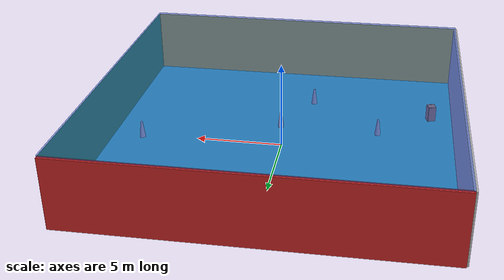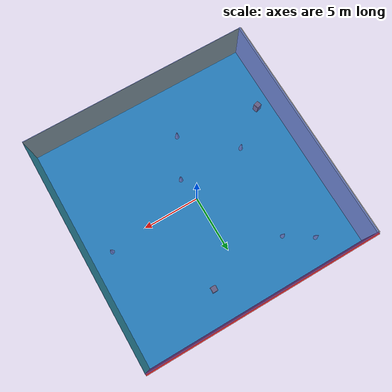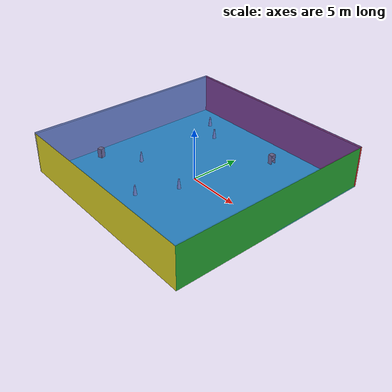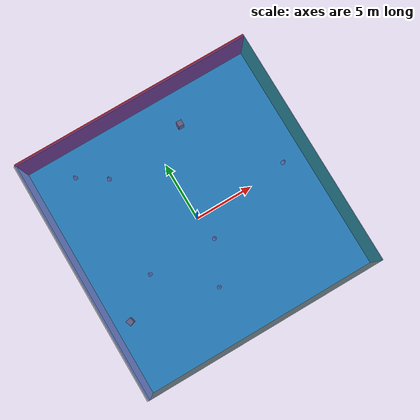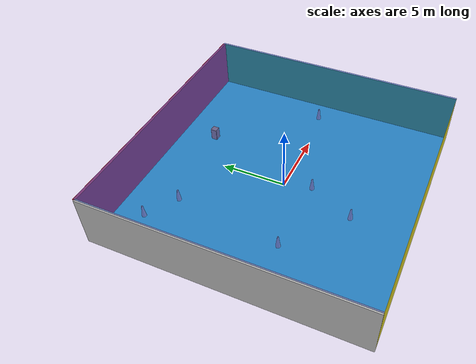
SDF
<sdf version="1.4">
 <world name="default">
  <physics type="ode">
   <max_step_size>0.001</max_step_size>
   <real_time_factor>1</real_time_factor>
   <real_time_update_rate>1000</real_time_update_rate>
   <gravity>0 0 -9.8</gravity>
  </physics>
  <scene><ambient>0.4 0.4 0.4 1</ambient><background>0.7 0.7 0.7 1</background><shadows>1</shadows></scene>
  <model name="Surrounding">
   <static>1</static>
   <link name="Ceiling">
    <collision name="Ceiling_Collision"><geometry><box><size>20 20 0.1</size></box></geometry></collision>
    <visual name="Ceiling_Visual">
     <geometry><box><size>20 20 0.1</size></box></geometry>
     <material>
      <script><uri>file://media/materials/scripts/gazebo.material</uri><name>Gazebo/BlueTransparent</name></script>
     </material>
    </visual>
    <pose>0 0 4.05 0 0 0</pose>
   </link>
   <link name="Wall_South">
    <collision name="Wall_South_Collision">
     <geometry><box><size>20 0 4</size></box></geometry>
     <pose>0 0 2 0 -0 0</pose>
    </collision>
    <visual name="Wall_South_Visual">
     <pose>0 0 2 0 -0 0</pose>
     <geometry><box><size>20 0 4</size></box></geometry>
     <material>
      <script><uri>file://media/materials/scripts/gazebo.material</uri><name>Gazebo/Yellow</name></script>
     </material>
    </visual>
    <velocity_decay><linear>0</linear><angular>0</angular></velocity_decay>
    <pose>0 -10 0 0 -0 0</pose>
   </link>
   <link name="Wall_East">
    <collision name="Wall_21_Collision">
     <geometry><box><size>20 0 4</size></box></geometry>
     <pose>0 0 2 0 -0 0</pose>
    </collision>
    <visual name="Wall_21_Visual">
     <pose>0 0 2 0 -0 0</pose>
     <geometry><box><size>20 0 4</size></box></geometry>
     <material>
      <script><uri>file://media/materials/scripts/gazebo.material</uri><name>Gazebo/Green</name></script>
     </material>
    </visual>
    <velocity_decay><linear>0</linear><angular>0</angular></velocity_decay>
    <pose>10 0 0 0 -0 1.5708</pose>
   </link>
   <link name="Wall_North">
    <collision name="Wall_22_Collision">
     <geometry><box><size>20 0.2 4</size></box></geometry>
     <pose>0 0 2 0 -0 0</pose>
    </collision>
    <visual name="Wall_22_Visual">
     <pose>0 0 2 0 -0 0</pose>
     <geometry><box><size>20 0.2 4</size></box></geometry>
     <material>
      <script><uri>file://media/materials/scripts/gazebo.material</uri><name>Gazebo/RedBright</name></script>
     </material>
    </visual>
    <velocity_decay><linear>0</linear><angular>0</angular></velocity_decay>
    <pose>0 10 0 0 -0 0</pose>
   </link>
   <link name="Wall_West">
    <collision name="Wall_23_Collision">
     <geometry><box><size>20 0.2 4</size></box></geometry>
     <pose>0 0 2 0 -0 0</pose>
    </collision>
    <visual name="Wall_23_Visual">
     <pose>0 0 2 0 -0 0</pose>
     <geometry><box><size>20 0.2 4</size></box></geometry>
     <material>
      <script><uri>file://media/materials/scripts/gazebo.material</uri><name>Gazebo/PioneerBody</name></script>
     </material>
    </visual>
    <velocity_decay><linear>0</linear><angular>0</angular></velocity_decay>
    <pose>-10 0 0 0 0 -1.5708</pose>
   </link>
   <link name="Ground_link">
    <collision name="collision">
     <pose>0 0 .05 0 -0 0</pose>
     <geometry><box><size>20 20 0.1</size></box></geometry>
    </collision>
    <visual name="visual">
     <pose>0 0 .05 0 -0 0</pose>
     <geometry><box><size>20 20 0.1</size></box></geometry>
     <material>
      <script><uri>file://media/materials/scripts/gazebo.material</uri><name>Gazebo/Turquoise</name></script>
     </material>
    </visual>
   </link>
   <static>1</static>
  </model>
  <spherical_coordinates>
   <surface_model>EARTH_WGS84</surface_model>
   <latitude_deg>0</latitude_deg>
   <longitude_deg>0</longitude_deg>
   <elevation>0</elevation>
   <heading_deg>0</heading_deg>
  </spherical_coordinates>
  <light name="lightball_0" type="diffuse">
   <diffuse>0.8 0.8 0.8 1</diffuse>
   <specular>0.2 0.2 0.2 1</specular>
   <attenuation>
    <range>100</range>
    <constant>0.7</constant>
    <linear>0.01</linear>
    <quadratic>0.001</quadratic>
   </attenuation>
   <direction>-0.5 0.1 -0.9</direction>
   <pose>-7.50146846994 8.92735917401 3.67838386155 0 0 0</pose>
  </light>
  <light name="lightball_1" type="diffuse">
   <diffuse>0.8 0.8 0.8 1</diffuse>
   <specular>0.2 0.2 0.2 1</specular>
   <attenuation>
    <range>100</range>
    <constant>0.7</constant>
    <linear>0.01</linear>
    <quadratic>0.001</quadratic>
   </attenuation>
   <direction>-0.5 0.1 -0.9</direction>
   <pose>4.78480504914 0.830635528144 1.70321269556 0 0 0</pose>
  </light>
  <light name="lightball_2" type="diffuse">
   <diffuse>0.8 0.8 0.8 1</diffuse>
   <specular>0.2 0.2 0.2 1</specular>
   <attenuation>
    <range>100</range>
    <constant>0.7</constant>
    <linear>0.01</linear>
    <quadratic>0.001</quadratic>
   </attenuation>
   <direction>-0.5 0.1 -0.9</direction>
   <pose>-2.57340593583 -0.52337172794 1.24479046435 0 0 0</pose>
  </light>
  <light name="lightball_3" type="diffuse">
   <diffuse>0.8 0.8 0.8 1</diffuse>
   <specular>0.2 0.2 0.2 1</specular>
   <attenuation>
    <range>100</range>
    <constant>0.7</constant>
    <linear>0.01</linear>
    <quadratic>0.001</quadratic>
   </attenuation>
   <direction>-0.5 0.1 -0.9</direction>
   <pose>2.07890814323 1.18217471713 1.16501590762 0 0 0</pose>
  </light>
  <light name="lightball_4" type="diffuse">
   <diffuse>0.8 0.8 0.8 1</diffuse>
   <specular>0.2 0.2 0.2 1</specular>
   <attenuation>
    <range>100</range>
    <constant>0.7</constant>
    <linear>0.01</linear>
    <quadratic>0.001</quadratic>
   </attenuation>
   <direction>-0.5 0.1 -0.9</direction>
   <pose>-5.88509743192 1.02566670645 1.41280452149 0 0 0</pose>
  </light>
  <include><uri>model://cabinet</uri><pose>-8.61960083781 -4.37169742261 0 0 0 0.283845601181</pose></include>
  <include>
   <uri>model://construction_cone</uri>
   <pose>-6.75487349227 7.76689325073 0 0 0 2.88462083146</pose>
  </include>
  <include>
   <uri>model://construction_cone</uri>
   <pose>-5.47646356729 -1.93631183289 0 0 0 2.9113126793</pose>
  </include>
  <include>
   <uri>model://construction_cone</uri>
   <pose>-4.46451203504 6.3160172868 0 0 0 2.09765568473</pose>
  </include>
  <include>
   <uri>model://construction_cone</uri>
   <pose>-1.28469303453 -5.58682906946 0 0 0 1.79225748061</pose>
  </include>
  <include>
   <uri>model://construction_cone</uri>
   <pose>0.35196165561 -2.07729702932 0 0 0 1.16442759485</pose>
  </include>
  <include><uri>model://cabinet</uri><pose>2.63544555655 7.18987434301 0 0 0 3.11132458505</pose></include>
  <include>
   <uri>model://construction_cone</uri>
   <pose>8.23325095075 0.391072715784 0 0 0 1.63471161263</pose>
  </include>
 </world>
</sdf>

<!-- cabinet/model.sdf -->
<sdf version="1.5">
  <model name="cabinet">
    <static>true</static>
    <link name="cabinet_bottom_plate">
      <inertial>
        <pose>0 0 -1 0 0 0</pose>
        <inertia>
          <ixx>2.050000</ixx>
          <ixy>0</ixy>
          <ixz>0</ixz>
          <iyy>2.050000</iyy>
          <iyz>0</iyz>
          <izz>2.050000</izz>
        </inertia>
        <mass>25.000000</mass>
      </inertial>
      <collision name="cabinet_bottom_plate_geom">
        <pose>0 0 0.010000 0 0 0</pose>
        <geometry>
          <box>
            <size>0.450000 0.450000 0.020000</size>
          </box>
        </geometry>
      </collision>
      <visual name="cabinet_bottom_plate_geom_visual">
        <pose>0 0 0.010000 0 0 0</pose>
        <geometry>
          <box>
            <size>0.450000 0.450000 0.020000</size>
          </box>
        </geometry>
        <material>
          <script>
            <uri>model://media/materials/scripts/gazebo.material</uri>
            <name>Gazebo/Wood</name>
          </script>
        </material>
      </visual>
      <collision name="cabinet_bottom_plate_geom_cabinet_back_plate">
        <pose>0.235000 0 0.510000 0 0 0</pose>
        <geometry>
          <box>
            <size>0.020000 0.450000 1.020000</size>
          </box>
        </geometry>
      </collision>
      <visual name="cabinet_bottom_plate_geom_cabinet_back_plate_visual">
        <pose>0.235000 0 0.510000 0 0 0</pose>
        <geometry>
          <box>
            <size>0.020000 0.450000 1.020000</size>
          </box>
        </geometry>
        <material>
          <script>
            <uri>model://media/materials/scripts/gazebo.material</uri>
            <name>Gazebo/Wood</name>
          </script>
        </material>
      </visual>
      <collision name="cabinet_bottom_plate_geom_cabinet_left_plate">
        <pose>0 0.235000 0.510000 0 0 0</pose>
        <geometry>
          <box>
            <size>0.450000 0.020000 1.020000</size>
          </box>
        </geometry>
      </collision>
      <visual name="cabinet_bottom_plate_geom_cabinet_left_plate_visual">
        <pose>0 0.235000 0.510000 0 0 0</pose>
        <geometry>
          <box>
            <size>0.450000 0.020000 1.020000</size>
          </box>
        </geometry>
        <material>
          <script>
            <uri>model://media/materials/scripts/gazebo.material</uri>
            <name>Gazebo/Wood</name>
          </script>
        </material>
      </visual>
      <collision name="cabinet_bottom_plate_geom_cabinet_middle_plate">
        <pose>0 0 0.510000 0 0 0</pose>
        <geometry>
          <box>
            <size>0.450000 0.450000 0.020000</size>
          </box>
        </geometry>
      </collision>
      <visual name="cabinet_bottom_plate_geom_cabinet_middle_plate_visual">
        <pose>0 0 0.510000 0 0 0</pose>
        <geometry>
          <box>
            <size>0.450000 0.450000 0.020000</size>
          </box>
        </geometry>
        <material>
          <script>
            <uri>model://media/materials/scripts/gazebo.material</uri>
            <name>Gazebo/Wood</name>
          </script>
        </material>
      </visual>
      <collision name="cabinet_bottom_plate_geom_cabinet_right_plate">
        <pose>0 -0.235000 0.510000 0 0 0</pose>
        <geometry>
          <box>
            <size>0.450000 0.020000 1.020000</size>
          </box>
        </geometry>
      </collision>
      <visual name="cabinet_bottom_plate_geom_cabinet_right_plate_visual">
        <pose>0 -0.235000 0.510000 0 0 0</pose>
        <geometry>
          <box>
            <size>0.450000 0.020000 1.020000</size>
          </box>
        </geometry>
        <material>
          <script>
            <uri>model://media/materials/scripts/gazebo.material</uri>
            <name>Gazebo/Wood</name>
          </script>
        </material>
      </visual>
      <collision name="cabinet_bottom_plate_geom_cabinet_top_plate">
        <pose>0 0 1.010000 0 0 0</pose>
        <geometry>
          <box>
            <size>0.450000 0.450000 0.020000</size>
          </box>
        </geometry>
      </collision>
      <visual name="cabinet_bottom_plate_geom_cabinet_top_plate_visual">
        <pose>0 0 1.010000 0 0 0</pose>
        <geometry>
          <box>
            <size>0.450000 0.450000 0.020000</size>
          </box>
        </geometry>
        <material>
          <script>
            <uri>model://media/materials/scripts/gazebo.material</uri>
            <name>Gazebo/Wood</name>
          </script>
        </material>
      </visual>
    </link>
  </model>
</sdf>

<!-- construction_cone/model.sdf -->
<sdf version="1.5">
  <model name="Construction Cone">
    <link name="link">
      <collision name="collision">
        <geometry>
          <mesh>
            <scale>10 10 10</scale>
            <uri>file://isr-testbed/construction_cone/meshes/construction_cone.dae</uri>
          </mesh>
        </geometry>
      </collision>
      <visual name="visual">
        <geometry>
          <mesh>
            <scale>10 10 10</scale>
            <uri>file://isr-testbed/construction_cone/meshes/construction_cone.dae</uri>
          </mesh>
        </geometry>
      </visual>
    </link>
  </model>
</sdf>
